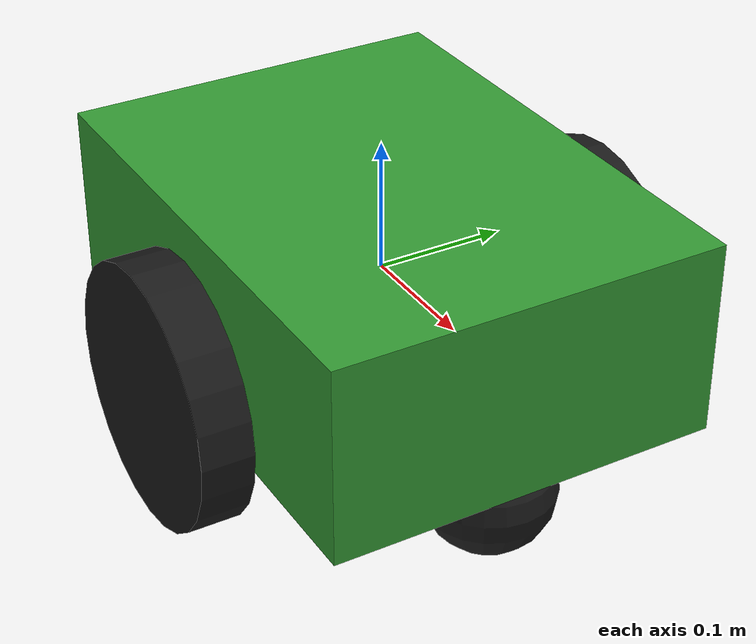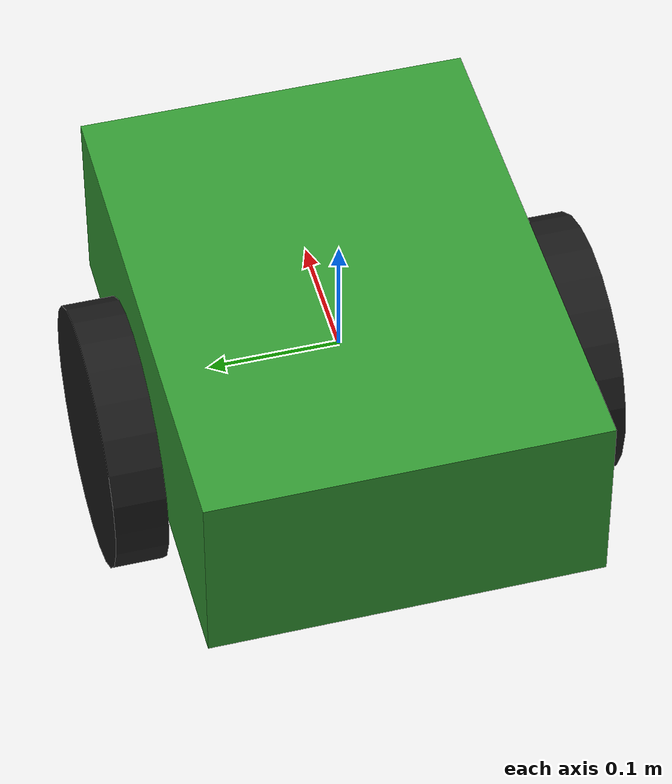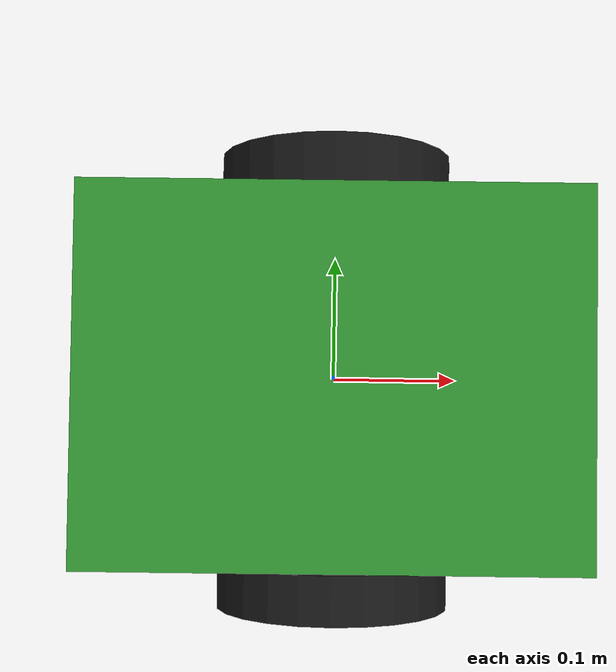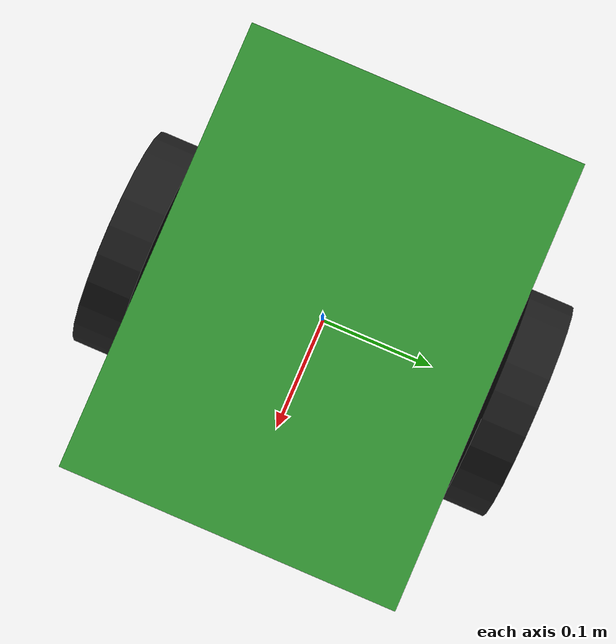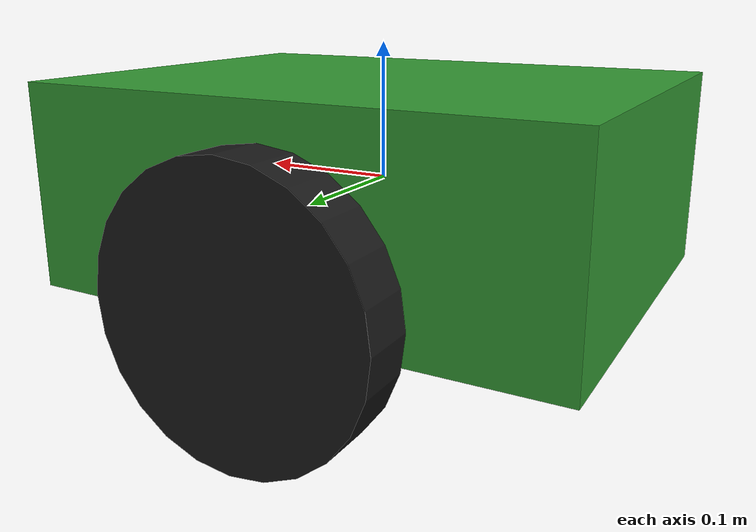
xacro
<?xml version="1.0"?>
<robot name="sample_rover" xmlns:xacro="http://www.ros.org/wiki/xacro">
  <link name="base_link">
    <visual>
      <origin xyz="0.0 0.0 0.0" rpy="0.0 0.0 0.0" />
      <geometry>
        <box size="0.4 0.3 0.15" />
      </geometry>
      <material name="chassis_green">
        <color rgba="0.2 0.6 0.2 1.0" />
      </material>
    </visual>
    <collision>
      <origin xyz="0.0 0.0 0.0" rpy="0.0 0.0 0.0" />
      <geometry>
        <box size="0.4 0.3 0.15" />
      </geometry>
    </collision>
    <inertial>
      <origin xyz="0.0 0.0 0.0" rpy="0 0 0" />
      <mass value="5.0" />
      <inertia ixx="0.05" iyy="0.08" izz="0.09" ixy="0.0" ixz="0.0" iyz="0.0" />
    </inertial>
  </link>
  <link name="left_wheel">
    <visual>
      <origin xyz="0.0 0.0 0.0" rpy="1.5707963 0.0 0.0" />
      <geometry>
        <cylinder radius="0.1" length="0.04" />
      </geometry>
      <material name="wheel_black">
        <color rgba="0.1 0.1 0.1 1.0" />
      </material>
    </visual>
    <collision>
      <origin xyz="0.0 0.0 0.0" rpy="1.5707963 0.0 0.0" />
      <geometry>
        <cylinder radius="0.1" length="0.04" />
      </geometry>
    </collision>
    <inertial>
      <origin xyz="0.0 0.0 0.0" rpy="0 0 0" />
      <mass value="0.3" />
      <inertia ixx="0.0008" iyy="0.0008" izz="0.0015" ixy="0.0" ixz="0.0" iyz="0.0" />
    </inertial>
  </link>
  <link name="right_wheel">
    <visual>
      <origin xyz="0.0 0.0 0.0" rpy="1.5707963 0.0 0.0" />
      <geometry>
        <cylinder radius="0.1" length="0.04" />
      </geometry>
      <material name="wheel_black">
        <color rgba="0.1 0.1 0.1 1.0" />
      </material>
    </visual>
    <collision>
      <origin xyz="0.0 0.0 0.0" rpy="1.5707963 0.0 0.0" />
      <geometry>
        <cylinder radius="0.1" length="0.04" />
      </geometry>
    </collision>
    <inertial>
      <origin xyz="0.0 0.0 0.0" rpy="0 0 0" />
      <mass value="0.3" />
      <inertia ixx="0.0008" iyy="0.0008" izz="0.0015" ixy="0.0" ixz="0.0" iyz="0.0" />
    </inertial>
  </link>
  <link name="caster_wheel">
    <visual>
      <origin xyz="0.0 0.0 0.0" rpy="0.0 0.0 0.0" />
      <geometry>
        <sphere radius="0.05" />
      </geometry>
      <material name="wheel_black">
        <color rgba="0.1 0.1 0.1 1.0" />
      </material>
    </visual>
    <collision>
      <origin xyz="0.0 0.0 0.0" rpy="0.0 0.0 0.0" />
      <geometry>
        <sphere radius="0.05" />
      </geometry>
    </collision>
    <inertial>
      <origin xyz="0.0 0.0 0.0" rpy="0 0 0" />
      <mass value="0.1" />
      <inertia ixx="0.0001" iyy="0.0001" izz="0.0001" ixy="0.0" ixz="0.0" iyz="0.0" />
    </inertial>
  </link>
  <joint name="left_wheel_joint" type="continuous">
    <parent link="base_link" />
    <child link="left_wheel" />
    <origin xyz="0.0 0.175 -0.05" rpy="0.0 0.0 0.0" />
    <axis xyz="0.0 1.0 0.0" />
  </joint>
  <joint name="right_wheel_joint" type="continuous">
    <parent link="base_link" />
    <child link="right_wheel" />
    <origin xyz="0.0 -0.175 -0.05" rpy="0.0 0.0 0.0" />
    <axis xyz="0.0 1.0 0.0" />
  </joint>
  <joint name="caster_wheel_joint" type="fixed">
    <parent link="base_link" />
    <child link="caster_wheel" />
    <origin xyz="0.15 0.0 -0.1" rpy="0.0 0.0 0.0" />
  </joint>
<ros2_control name="sample_rover" type="system">
  <hardware>
    <plugin>mock_components/GenericSystem</plugin>
  </hardware>
  <joint name="left_wheel_joint">
    <command_interface name="velocity" />
    <state_interface name="position" />
    <state_interface name="velocity" />
  </joint>
  <joint name="right_wheel_joint">
    <command_interface name="velocity" />
    <state_interface name="position" />
    <state_interface name="velocity" />
  </joint>
</ros2_control><gazebo reference="base_link">
    <visual>
      <material>
        <ambient>0.2 0.6 0.2 1.0</ambient>
        <diffuse>0.2 0.6 0.2 1.0</diffuse>
        <specular>0.2 0.6 0.2 1.0</specular>
      </material>
    </visual>
  </gazebo>
  <gazebo reference="left_wheel">
    <visual>
      <material>
        <ambient>0.1 0.1 0.1 1.0</ambient>
        <diffuse>0.1 0.1 0.1 1.0</diffuse>
        <specular>0.1 0.1 0.1 1.0</specular>
      </material>
    </visual>
  </gazebo>
  <gazebo reference="right_wheel">
    <visual>
      <material>
        <ambient>0.1 0.1 0.1 1.0</ambient>
        <diffuse>0.1 0.1 0.1 1.0</diffuse>
        <specular>0.1 0.1 0.1 1.0</specular>
      </material>
    </visual>
  </gazebo>
  <gazebo reference="caster_wheel">
    <visual>
      <material>
        <ambient>0.1 0.1 0.1 1.0</ambient>
        <diffuse>0.1 0.1 0.1 1.0</diffuse>
        <specular>0.1 0.1 0.1 1.0</specular>
      </material>
    </visual>
  </gazebo>
  <gazebo>
    <plugin filename="libgz_ros2_control-system.so" name="gz_ros2_control::GazeboSimROS2ControlPlugin">
      <parameters>$(find sample_rover)/config/controllers.yaml</parameters>
    </plugin>
  </gazebo>
</robot>
